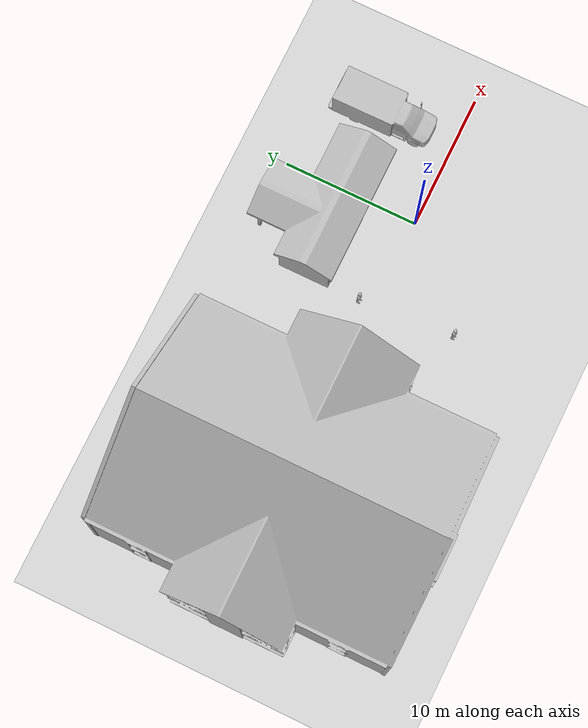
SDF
<sdf version="1.7">
 <world name="default">
  <light name="sun" type="directional">
   <pose>0 0 10 0 -0 0</pose>
   <diffuse>0.8 0.8 0.8 1</diffuse>
   <specular>0.2 0.2 0.2 1</specular>
   <attenuation>
    <range>1000</range>
    <constant>0.9</constant>
    <linear>0.01</linear>
    <quadratic>0.001</quadratic>
   </attenuation>
   <direction>-0.5 0.1 -0.9</direction>
   <spot><inner_angle>0</inner_angle><outer_angle>0</outer_angle><falloff>0</falloff></spot>
  </light>
  <model name="ground_plane">
   <static>1</static>
   <link name="link">
    <collision name="collision">
     <geometry><plane><normal>0 0 1</normal><size>100 100</size></plane></geometry>
     <surface><friction><ode><mu>100</mu><mu2>50</mu2></ode></friction></surface>
    </collision>
    <visual name="visual">
     <cast_shadows>0</cast_shadows>
     <geometry><plane><normal>0 0 1</normal><size>100 100</size></plane></geometry>
     <material>
      <script><uri>file://media/materials/scripts/gazebo.material</uri><name>Gazebo/Grey</name></script>
     </material>
    </visual>
   </link>
  </model>
  <gravity>0 0 -9.8</gravity>
  <magnetic_field>6e-06 2.3e-05 -4.2e-05</magnetic_field>
  <atmosphere type="adiabatic"/>
  <physics type="ode">
   <max_step_size>0.001</max_step_size>
   <real_time_factor>1</real_time_factor>
   <real_time_update_rate>1000</real_time_update_rate>
  </physics>
  <scene><ambient>0.4 0.4 0.4 1</ambient><background>0.7 0.7 0.7 1</background><shadows>1</shadows></scene>
  <audio><device>default</device></audio>
  <spherical_coordinates>
   <surface_model>EARTH_WGS84</surface_model>
   <latitude_deg>0</latitude_deg>
   <longitude_deg>0</longitude_deg>
   <elevation>0</elevation>
   <heading_deg>0</heading_deg>
  </spherical_coordinates>
  <model name="post_office">
   <static>1</static>
   <link name="link">
    <collision name="collision">
     <geometry><mesh><uri>model://post_office/meshes/post_office.dae</uri></mesh></geometry>
    </collision>
    <visual name="visual">
     <geometry><mesh><uri>model://post_office/meshes/post_office.dae</uri></mesh></geometry>
    </visual>
   </link>
   <pose>-1.76858 5.40412 0 0 -0 0</pose>
  </model>
  <model name="apartment">
   <static>1</static>
   <link name="link">
    <collision name="collision">
     <geometry><mesh><uri>model://apartment/meshes/apartment.dae</uri></mesh></geometry>
    </collision>
    <visual name="visual">
     <geometry><mesh><uri>model://apartment/meshes/apartment.dae</uri></mesh></geometry>
    </visual>
   </link>
   <pose>-21.1583 -0.63127 0 0 -0 0</pose>
  </model>
  <model name="person_standing">
   <link name="link">
    <inertial>
     <pose>0 -0.1 0.95 0 -0 0</pose>
     <mass>80</mass>
     <inertia><ixx>24.88</ixx><ixy>0</ixy><ixz>0</ixz><iyy>25.73</iyy><iyz>0</iyz><izz>2.48</izz></inertia>
    </inertial>
    <collision name="bottom">
     <pose>0 -0.1 0.01 0 -0 0</pose>
     <geometry><box><size>0.5 0.35 0.02</size></box></geometry>
    </collision>
    <collision name="person">
     <pose>0 0 0.02 0.04 -0 0</pose>
     <geometry><mesh><uri>model://person_standing/meshes/standing.dae</uri></mesh></geometry>
    </collision>
    <visual name="visual">
     <pose>0 0 0.02 0.04 -0 0</pose>
     <geometry><mesh><uri>model://person_standing/meshes/standing.dae</uri></mesh></geometry>
    </visual>
   </link>
   <pose>-6.74509 1.23813 0 -1e-06 -1e-06 -0.000142</pose>
  </model>
  <model name="person_standing_0">
   <link name="link">
    <inertial>
     <pose>0 -0.1 0.95 0 -0 0</pose>
     <mass>80</mass>
     <inertia><ixx>24.88</ixx><ixy>0</ixy><ixz>0</ixz><iyy>25.73</iyy><iyz>0</iyz><izz>2.48</izz></inertia>
    </inertial>
    <collision name="bottom">
     <pose>0 -0.1 0.01 0 -0 0</pose>
     <geometry><box><size>0.5 0.35 0.02</size></box></geometry>
    </collision>
    <collision name="person">
     <pose>0 0 0.02 0.04 -0 0</pose>
     <geometry><mesh><uri>model://person_standing/meshes/standing.dae</uri></mesh></geometry>
    </collision>
    <visual name="visual">
     <pose>0 0 0.02 0.04 -0 0</pose>
     <geometry><mesh><uri>model://person_standing/meshes/standing.dae</uri></mesh></geometry>
    </visual>
   </link>
   <pose>-6.24156 -5.73909 -0 -1e-06 -1e-06 -0.000275</pose>
  </model>
  <model name="ambulance">
   <static>1</static>
   <link name="link">
    <collision name="collision">
     <geometry>
      <mesh><scale>0.0254 0.0254 0.0254</scale><uri>model://ambulance/meshes/ambulance.obj</uri></mesh>
     </geometry>
    </collision>
    <visual name="visual">
     <geometry>
      <mesh><scale>0.0254 0.0254 0.0254</scale><uri>model://ambulance/meshes/ambulance.obj</uri></mesh>
     </geometry>
    </visual>
   </link>
   <pose>6.19749 5.47863 0 0 -0 0</pose>
  </model>
 </world>
</sdf>
